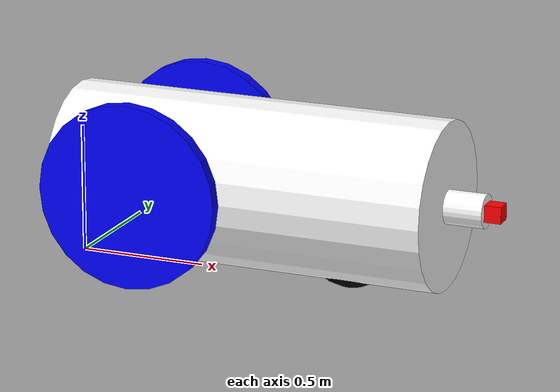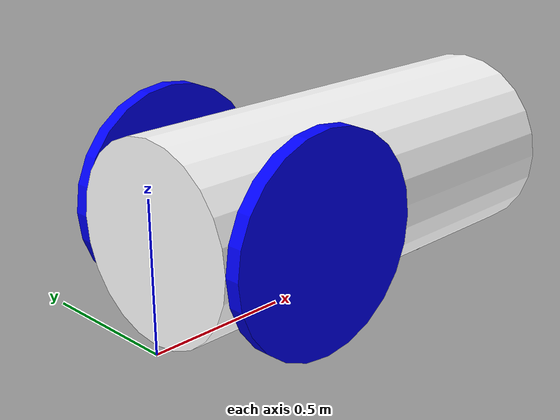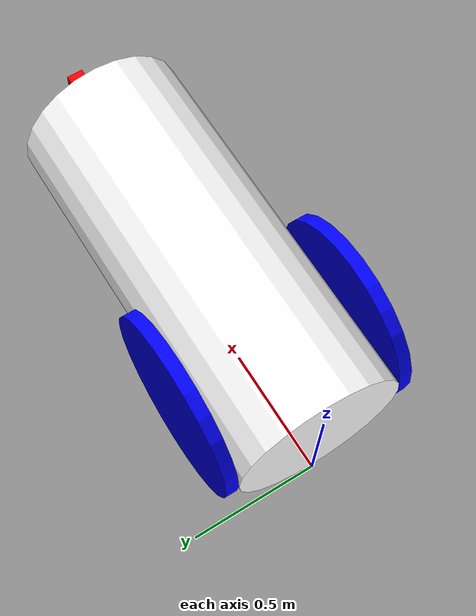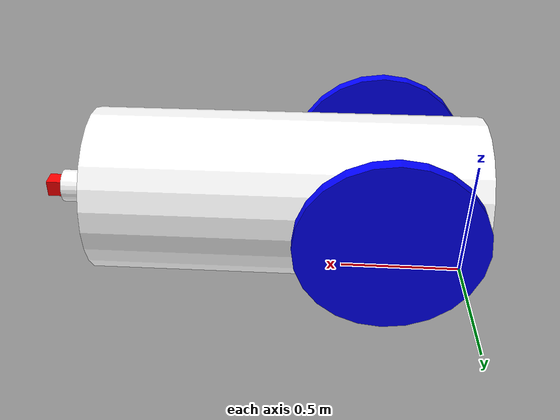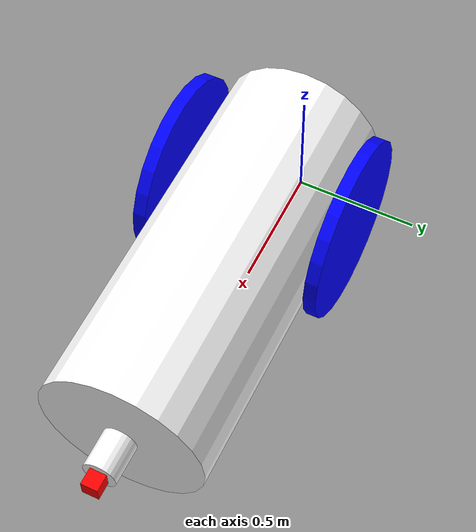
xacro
<?xml version="1.0"?>
<robot xmlns:xacro="http://www.ros.org/wiki/xacro" name="colonoscopy">

    <!-- COLORS -->
    <material name="white">
        <color rgba="1 1 1 1" />
    </material>

    <material name="orange">
        <color rgba="1 0.3 0.1 1"/>
    </material>

    <material name="blue">
        <color rgba="0 0 1 1"/>
    </material>

    <material name="black">
        <color rgba="0 0 0 1"/>
    </material>

    <material name="red">
        <color rgba="1 0 0 1"/>
    </material>

    <!-- BASE LINK -->
    <link name="base_link"/>

    <!-- DEFINE PARAMETERS -->
    <xacro:property name="chassis_radius" value="0.0065"/>
    <xacro:property name="chassis_length" value="0.03"/>
    <xacro:property name="wheel_radius" value="0.008"/>
    <xacro:property name="wheel_length" value="0.001"/>
    <xacro:property name="chassis_mass" value="1.0"/>
    <xacro:property name="wheel_mass" value="0.005"/>
    <xacro:property name="caster_wheel_mass" value="0.005"/>

    <!-- Update All Parameters from a Single Parameter -->
    <xacro:property name="scale" value="50.0"/>
    <xacro:property name="scaled_back_chassis_radius" value="${chassis_radius * scale}"/>
    <xacro:property name="scaled_back_chassis_length" value="${chassis_length * scale}"/>
    <xacro:property name="scaled_back_wheel_radius" value="${scaled_back_chassis_radius * 1.1}"/>
    <xacro:property name="scaled_back_wheel_length" value="${wheel_length * scale}"/>
    <xacro:property name="scaled_front_chassis_radius" value="${scaled_back_chassis_radius * 0.2}"/>
    <xacro:property name="scaled_front_chassis_length" value="${scaled_back_chassis_length * 0.1}"/>

    <xacro:property name="scaled_back_chassis_mass" value="${chassis_mass * scale}"/>
    <xacro:property name="scaled_front_chassis_mass" value="${scaled_back_chassis_mass * 0.1}"/>
    <xacro:property name="scaled_back_wheel_mass" value="${wheel_mass * scale}"/>
    <xacro:property name="scaled_caster_wheel_mass" value="${caster_wheel_mass * scale}"/>
    <xacro:property name="scaled_camera_length" value="${scaled_back_chassis_radius / 5}"/>

    <!-- BACK CHASSIS LINK -->
    <joint name="back_chassis_joint" type="fixed">
        <parent link="base_link"/>
        <child link="back_chassis"/>
        <origin xyz="${scaled_back_chassis_length / 2} 0 ${scaled_back_wheel_radius}" rpy="0 0 0"/>
    </joint>

    <link name="back_chassis">
        <visual>
            <origin xyz="0 0 0" rpy="0 ${pi/2} 0"/>
            <geometry>
                <cylinder radius="${scaled_back_chassis_radius}" length="${scaled_back_chassis_length}"/>
            </geometry>
            <material name="white"/>
        </visual>
        <collision>
            <origin xyz="0 0 0" rpy="0 ${pi/2} 0"/>
            <geometry>
                <cylinder radius="${scaled_back_chassis_radius * 0.8}" length="${scaled_back_chassis_length * 0.8}"/>
            </geometry>
        </collision>
        <xacro:inertial_cylinder mass="${scaled_back_chassis_mass}" radius="${scaled_back_chassis_radius}" length="${scaled_back_chassis_length}">
            <origin xyz="0 0 0" rpy="0 ${pi/2} 0"/>
        </xacro:inertial_cylinder>
    </link>

    <gazebo reference="back_chassis">
        <material>Gazebo/White</material>
    </gazebo>

    <!-- LEFT BACK WHEEL LINK -->
    <joint name="lb_wheel_joint" type="continuous">
        <parent link="base_link"/>
        <child link="lb_wheel"/>
        <origin xyz="${scaled_back_wheel_radius} ${scaled_back_chassis_radius} ${scaled_back_wheel_radius}" rpy="-${pi/2} 0 0" />
        <axis xyz="0 0 1"/>
    </joint>

    <link name="lb_wheel">
        <visual>
            <origin xyz="0 0 ${scaled_back_wheel_length / 2}" rpy="0 0 0"/>
            <geometry>
                <cylinder radius="${scaled_back_wheel_radius}" length="${scaled_back_wheel_length}"/>
            </geometry>
            <material name="blue"/>
        </visual>
        <collision>
            <origin xyz="0 0 ${scaled_back_wheel_length / 2}" rpy="0 0 0"/>
            <geometry>
                <cylinder radius="${scaled_back_wheel_radius}" length="${scaled_back_wheel_length}"/>
            </geometry>
        </collision>
        <xacro:inertial_cylinder mass="${scaled_back_wheel_mass}" radius="${scaled_back_wheel_radius}" length="${scaled_back_wheel_length}">
            <origin xyz="0 0 ${scaled_back_wheel_length / 2}" rpy="0 0 0"/>
        </xacro:inertial_cylinder>
    </link>

    <gazebo reference="lb_wheel">
        <material>Gazebo/Blue</material>
    </gazebo>

    <!-- RIGHT BACK WHEEL LINK -->
    <joint name="rb_wheel_joint" type="continuous">
        <parent link="base_link"/>
        <child link="rb_wheel"/>
        <origin xyz="${scaled_back_wheel_radius} -${scaled_back_chassis_radius} ${scaled_back_wheel_radius}" rpy="${pi/2} 0 0" />
        <axis xyz="0 0 -1"/>
    </joint>

    <link name="rb_wheel">
        <visual>
            <origin xyz="0 0 ${scaled_back_wheel_length / 2}" rpy="0 0 0"/>
            <geometry>
                <cylinder radius="${scaled_back_wheel_radius}" length="${scaled_back_wheel_length}"/>
            </geometry>
            <material name="blue"/>
        </visual>
        <collision>
            <origin xyz="0 0 ${scaled_back_wheel_length / 2}" rpy="0 0 0"/>
            <geometry>
                <cylinder radius="${scaled_back_wheel_radius}" length="${scaled_back_wheel_length}"/>
            </geometry>
        </collision>
        <xacro:inertial_cylinder mass="${scaled_back_wheel_mass}" radius="${scaled_back_wheel_radius}" length="${scaled_back_wheel_length}">
            <origin xyz="0 0 ${scaled_back_wheel_length / 2}" rpy="0 0 0"/>
        </xacro:inertial_cylinder>
    </link>

    <gazebo reference="rb_wheel">
        <material>Gazebo/Blue</material>
    </gazebo>

    <!-- BACK CASTER WHEEL LINK -->
    <joint name="b_caster_wheel_joint" type="fixed">
        <parent link="back_chassis"/>
        <child link="b_caster_wheel"/>
        <origin xyz="${scaled_back_chassis_length / 4} 0 -${scaled_back_wheel_radius / 2}" rpy="0 0 0"/>
    </joint>

    <link name="b_caster_wheel">
        <visual>
            <geometry>
                <sphere radius="${scaled_back_wheel_radius / 2}"/>
            </geometry>
            <material name="black"/>
        </visual>
        <collision>
            <geometry>
                <sphere radius="${scaled_back_wheel_radius / 2}"/>
            </geometry>
        </collision>
        <xacro:inertial_sphere mass="${scaled_caster_wheel_mass}" radius="${scaled_back_wheel_radius / 2}">
            <origin xyz="0 0 0" rpy="0 0 0"/>
        </xacro:inertial_sphere>
    </link>

    <gazebo reference="b_caster_wheel">
        <material>Gazebo/Black</material>
        <mu1 value="0.001"/>
        <mu2 value="0.001"/>
    </gazebo>

    <!-- CHASSIS BETWEEN JOINT -->
    <joint name="chassis_roll_joint" type="revolute">
        <parent link="back_chassis"/>
        <child link="chassis_roll_link"/>
        <origin xyz="${scaled_back_chassis_length / 2}  0 0" rpy="0 0 0"/>
        <axis xyz="-1 0 0"/>
        <limit lower="-${pi / 4}" upper="${pi / 4}" effort="1000.0" velocity="1.0"/>
    </joint>

    <link name="chassis_roll_link">
        <inertial>
            <mass value="0.001"/>
            <inertia ixx="1e-6" ixy="0" ixz="0" iyy="1e-6" iyz="0" izz="1e-6"/>
        </inertial>
    </link>

    <!-- Pitch Joint -->
    <joint name="chassis_pitch_joint" type="revolute">
        <parent link="chassis_roll_link"/>
        <child link="chassis_pitch_link"/>
        <axis xyz="0 1 0"/>
        <origin xyz="0 0 0" rpy="0 0 0"/>
        <limit lower="-${pi / 4}" upper="${pi / 4}" effort="1000.0" velocity="1.0"/>
    </joint>

    <link name="chassis_pitch_link">
        <inertial>
            <mass value="0.001"/>
            <inertia ixx="1e-6" ixy="0" ixz="0" iyy="1e-6" iyz="0" izz="1e-6"/>
        </inertial>
    </link>

    <!-- Yaw Joint -->
    <joint name="chassis_yaw_joint" type="revolute">
        <parent link="chassis_pitch_link"/>
        <child link="front_chassis"/>
        <axis xyz="0 0 1"/>
        <origin xyz="0 0 0" rpy="0 0 0"/>
        <limit lower="-${pi / 4}" upper="${pi / 4}" effort="1000.0" velocity="1.0"/>
    </joint>

    <link name="front_chassis">
        <visual>
            <origin xyz="${scaled_front_chassis_length / 2} 0 0" rpy="0 ${pi/2} 0"/>
            <geometry>
                <cylinder radius="${scaled_front_chassis_radius}" length="${scaled_front_chassis_length}"/>
            </geometry>
            <material name="white"/>
        </visual>
        <collision>
            <origin xyz="${scaled_front_chassis_length / 2} 0 0" rpy="0 ${pi/2} 0"/>
            <geometry>
                <cylinder radius="${scaled_front_chassis_radius}" length="${scaled_front_chassis_length / 10}"/>
            </geometry>
        </collision>
        <xacro:inertial_cylinder mass="${scaled_front_chassis_mass}" radius="${scaled_front_chassis_radius / 5}" length="${scaled_back_chassis_length}">
            <origin xyz="${scaled_front_chassis_length / 2} 0 0" rpy="0 ${pi/2} 0"/>
        </xacro:inertial_cylinder>
    </link>

    <gazebo reference="front_chassis">
        <material>Gazebo/White</material>
    </gazebo>

    <!-- LEFT FRONT WHEEL LINK -->

    <!-- RIGHT FRONT WHEEL LINK -->

    <!-- FRONT CASTER WHEEL LINK -->

    <!-- CAMERA -->
    <joint name="camera_joint" type="fixed">
        <parent link="front_chassis"/>
        <child link="camera_link"/>
        <origin xyz="${scaled_front_chassis_length} 0 0" rpy="0 0 0"/>
    </joint>

    <link name="camera_link">
        <visual>
            <origin xyz="${scaled_camera_length / 2} 0 0" rpy="0 0 0"/>
            <geometry>
                <box size="${scaled_camera_length} ${scaled_camera_length} ${scaled_camera_length}"/>
            </geometry>
            <material name="red"/>
        </visual>
        <collision>
            <origin xyz="${scaled_camera_length / 2} 0 0" rpy="0 0 0"/>
            <geometry>
                <box size="${scaled_camera_length} ${scaled_camera_length} ${scaled_camera_length}"/>
            </geometry>
        </collision>
    </link>

    <joint name="camera_optical_joint" type="fixed">
        <parent link="camera_link"/>
        <child link="camera_optical_link"/>
        <origin xyz="0 0 0" rpy="${-pi/2} 0 ${-pi/2}"/>
    </joint>

    <link name="camera_optical_link"/>

</robot>
